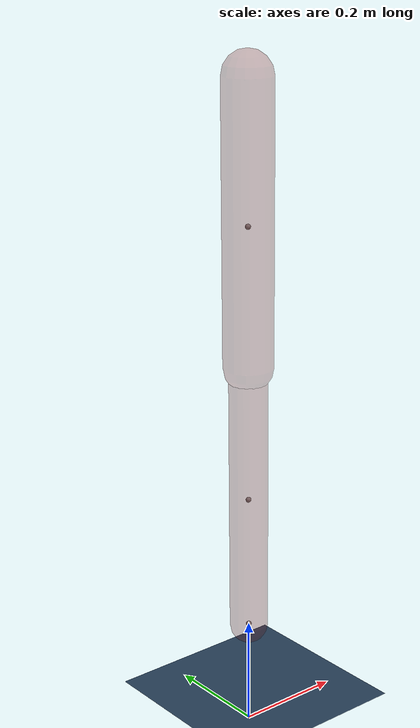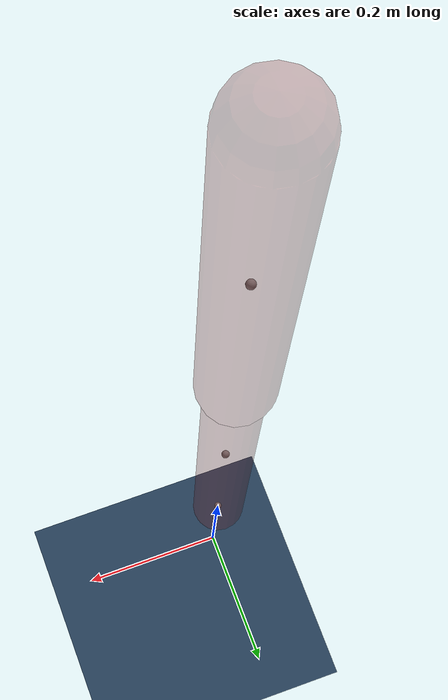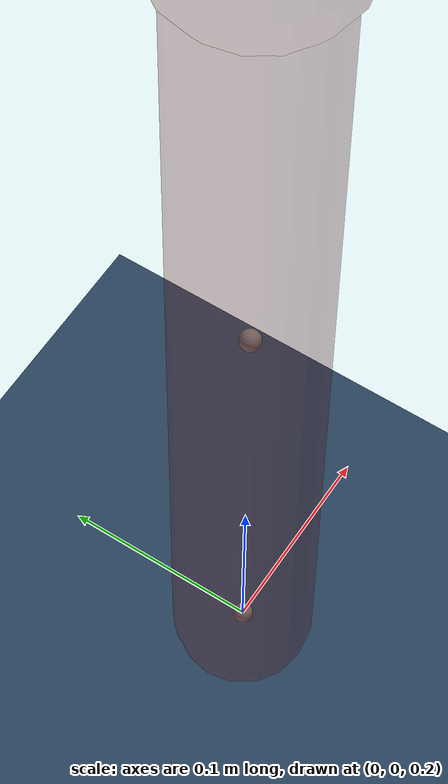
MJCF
<mujoco model="arm2">
  <compiler autolimits="true"/>
  <option timestep="0.001" iterations="50" solver="Newton" tolerance="1e-10" integrator="RK4">
    <flag contact="disable" />
  </option>

  <visual>
    <map force="0.1" zfar="30"/>
    <rgba haze="0.15 0.25 0.35 1"/>
    <global offwidth="2560" offheight="1440" elevation="-25" azimuth="120"/>
  </visual>

  <statistic center="0 0 0.7"/>

  <asset>
    <texture type="skybox" builtin="gradient" rgb1=".3 .5 .7" rgb2="0 0 0" width="32" height="512"/>
    <texture name="body" type="cube" builtin="flat" mark="cross" width="128" height="128" rgb1="0.8 0.6 0.4" rgb2="0.8 0.6 0.4" markrgb="1 1 1" random="0.01"/>
    <material name="body" texture="body" texuniform="true" rgba="0.8 0.6 .4 1"/>
    <texture name="grid" type="2d" builtin="checker" width="512" height="512" rgb1=".1 .2 .3" rgb2=".2 .3 .4"/>
    <material name="grid" texture="grid" texrepeat="1 1" texuniform="true" reflectance=".2"/>
  </asset>

  <worldbody>
    <geom name="floor" size="0 0 .05" type="plane" material="grid" condim="3"/>
    <light name="spotlight" mode="targetbodycom" target="arm" diffuse=".8 .8 .8" specular="0.3 0.3 0.3" pos="0 -6 4" cutoff="30"/>

    <body name="arm" pos="0 0 1.2">
      <geom name="upper_arm" type="capsule" size="0.045" fromto="0 0 0  0 0 -0.5" rgba=".5 .1 .1 .3" condim="6" friction=".6" solimp=".7 .8 .003" solref=".015 1" mass="0.5"/>
      <joint name="shoulder" type="hinge" solreffriction=".15 1" axis="0 1 0" frictionloss="0.1"/>
      <site name="hshoulder" pos="0 0 -0.25"/>
      <body name="forearm" pos="0 0 -0.5">
        <geom name="forearm" type="capsule" size="0.035" fromto="0 0 0  0 0 -0.5" rgba=".5 .1 .1 .3" condim="6" friction=".6" solimp=".7 .8 .003" solref=".015 1" mass="0.5"/>
        <joint name="elbow" type="hinge" solreffriction=".15 1" axis="0 1 0" frictionloss="0.1"/>
        <site name="helbow" pos="0 0 -0.25"/>
      </body>
    </body>

    <body name="arm_2" pos="0 0 1.2">
      <geom name="upper_arm_2" type="capsule" size="0.045" fromto="0 0 0  0 0 -0.5" rgba=".0 .4 .1 .3" condim="6" friction=".6" solimp=".7 .8 .003" solref=".015 1" mass="0.5"/>
      <joint name="shoulder_2" type="hinge" solreffriction=".15 1" axis="0 1 0" frictionloss="0.1"/>
      <site name="hshoulder_2" pos="0 0 -0.25"/>
      <body name="forearm_2" pos="0 0 -0.5">
        <geom name="forearm_2" type="capsule" size="0.035" fromto="0 0 0  0 0 -0.5" rgba=".0 .4 .1 .3" condim="6" friction=".6" solimp=".7 .8 .003" solref=".015 1" mass="0.5"/>
        <joint name="elbow_2" type="hinge" solreffriction=".15 1" axis="0 1 0" frictionloss="0.1"/>
        <site name="helbow_2" pos="0 0 -0.25"/>
        <site name="endeff" pos="0 0 -0.5"/>
      </body>
    </body>

  </worldbody>

  <actuator>
    <position name="shoulder_p" joint="shoulder" ctrlrange="-3.1415 3.1415" kp="300" kv="0.9"/>
    <position name="elbow_p" joint="elbow" ctrlrange="-3.1415 3.1415" kp="300" kv="0.9"/>
    <general name="shoulder_t_2" joint="shoulder_2" dyntype="filterexact" dynprm="0.01" ctrlrange="-500 500" forcerange="-500 500"/>
    <general name="elbow_t_2" joint="elbow_2" dyntype="filterexact" dynprm="0.01" ctrlrange="-500 500" forcerange="-500 500"/>
  </actuator>

  <tendon>
    <spatial name="hshoulder_tendon" stiffness="100" damping="0" range="0 100" springlength="-1 -1" limited="true" width=".002" rgba=".95 .3 .3 1">
      <site site="hshoulder"/>
      <site site="hshoulder_2"/>

    </spatial>
    <spatial name="helbow_tendon" stiffness="100" damping="0" range="0 100" springlength="-1 -1" limited="true" width=".002" rgba=".95 .3 .3 1">
      <site site="helbow"/>
      <site site="helbow_2"/>
    </spatial>
  </tendon>

  <sensor>
    <framepos objtype="site" objname="endeff"/>
    <framelinvel objtype="site" objname="endeff"/>
  </sensor>

</mujoco>
